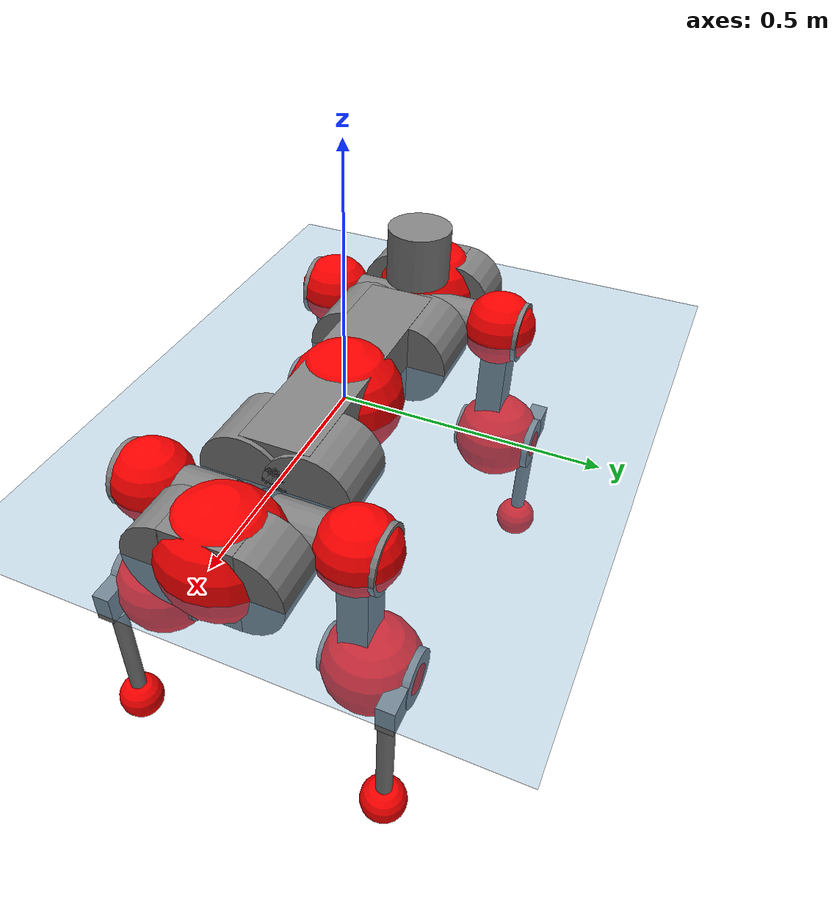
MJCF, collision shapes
<mujoco model="anymal_c">
  <compiler angle="radian" assetdir="assets" balanceinertia="true" inertiafromgeom="false"/>

  <option timestep="0.005" density="1.2" viscosity="2e-05"/>

  <size nkey="1"/>

  <visual>
    <quality shadowsize="8192"/>
    <map shadowclip="0.5"/>
  </visual>

  <default>
    <default class="/">
      <material specular="0" shininess="0.25"/>
      <geom contype="0" conaffinity="0" group="1" solref="-1000 -80"/>
      <site size="0.01 0.005 0.005" group="5"/>
      <general forcelimited="true" forcerange="-80 80" biastype="affine" gainprm="80" biasprm="0 -80 -2"/>
      <default class="anymal_c">
        <joint armature="0.01" damping="0.01" frictionloss="0.1"/>
        <default class="visual">
          <geom type="mesh" group="2"/>
          <default class="visual_zflip"/>
        </default>
        <default class="collision">
          <geom type="cylinder" group="3"/>
          <default class="foot">
            <geom size="0.03 0 0" type="sphere" condim="6" priority="1" friction="0.8 0.02 0.01" solimp="0.015 1 0.03"/>
          </default>
        </default>
      </default>
      <default class="reward_collision_sphere">
        <geom group="5" rgba="1 0 0 1"/>
      </default>
    </default>
  </default>

  <asset>
    <texture type="skybox" colorspace="auto" name="//unnamed_texture_0" builtin="gradient" rgb1="0.95 0.95 0.95" rgb2="0.95 0.95 0.95" width="100" height="600"/>
    <texture type="2d" colorspace="auto" name="texplane" builtin="checker" rgb1="0.345 0.575 0.748" rgb2="0.345 0.575 0.748" markrgb="1 1 1" width="512" height="512"/>
    <texture type="2d" colorspace="linear" name="base" file="base.png"/>
    <texture type="2d" colorspace="linear" name="top_shell" file="top_shell.png"/>
    <texture type="2d" colorspace="linear" name="bottom_shell" file="bottom_shell.png"/>
    <texture type="2d" colorspace="linear" name="remote" file="remote.png"/>
    <texture type="2d" colorspace="linear" name="hatch" file="hatch.png"/>
    <texture type="2d" colorspace="linear" name="handle" file="handle.png"/>
    <texture type="2d" colorspace="linear" name="face" file="face.png"/>
    <texture type="2d" colorspace="linear" name="battery" file="battery.png"/>
    <texture type="2d" colorspace="linear" name="lidar_cage" file="lidar_cage.png"/>
    <texture type="2d" colorspace="linear" name="depth_camera" file="depth_camera.png"/>
    <texture type="2d" colorspace="linear" name="wide_angle_camera" file="wide_angle_camera.png"/>
    <texture type="2d" colorspace="linear" name="lidar" file="lidar.png"/>
    <texture type="2d" colorspace="linear" name="drive" file="drive.png"/>
    <texture type="2d" colorspace="linear" name="hip_l" file="hip_l.png"/>
    <texture type="2d" colorspace="linear" name="shank_l" file="shank_l.png"/>
    <texture type="2d" colorspace="linear" name="foot" file="foot.png"/>
    <texture type="2d" colorspace="linear" name="thigh" file="thigh.png"/>
    <texture type="2d" colorspace="linear" name="shank_r" file="shank_r.png"/>
    <texture type="2d" colorspace="linear" name="hip_r" file="hip_r.png"/>
    <material name="MatPlane" class="/" texture="texplane" texuniform="true" texrepeat="2 2" specular="0.9" shininess="0.5"/>
    <material name="black_plastic" class="/" rgba="0.007 0.007 0.007 1"/>
    <material name="green" class="/" rgba="0.052 0.178 0.033 1"/>
    <material name="red" class="/" rgba="0.178 0.006 0.005 1"/>
    <material name="yellow" class="/" rgba="0.178 0.119 0.006 1"/>
    <material name="lwl" class="/" rgba="0.8 0.8 0.8 1"/>
    <material name="base" class="/" texture="base"/>
    <material name="top_shell" class="/" texture="top_shell"/>
    <material name="bottom_shell" class="/" texture="bottom_shell"/>
    <material name="hip_l" class="/" texture="hip_l"/>
    <material name="thigh" class="/" texture="thigh"/>
    <material name="shank_l" class="/" texture="shank_l"/>
    <material name="foot" class="/" texture="foot"/>
    <material name="hip_r" class="/" texture="hip_r"/>
    <material name="shank" class="/" texture="shank_r"/>
    <material name="hatch" class="/" texture="hatch"/>
    <material name="remote" class="/" texture="remote"/>
    <material name="handle" class="/" texture="handle"/>
    <material name="face" class="/" texture="face"/>
    <material name="depth_camera" class="/" texture="depth_camera"/>
    <material name="wide_angle_camera" class="/" texture="wide_angle_camera"/>
    <material name="battery" class="/" texture="battery"/>
    <material name="lidar_cage" class="/" texture="lidar_cage"/>
    <material name="lidar" class="/" texture="lidar"/>
    <material name="drive" class="/" texture="drive"/>
    <mesh name="base_0" class="/" file="base_0.obj"/>
    <mesh name="base_1" class="/" file="base_1.obj"/>
    <mesh name="base_2" class="/" file="base_2.obj"/>
    <mesh name="base_3" class="/" file="base_3.obj"/>
    <mesh name="base_4" class="/" file="base_4.obj"/>
    <mesh name="base_5" class="/" file="base_5.obj"/>
    <mesh name="top_shell" class="/" file="top_shell.obj"/>
    <mesh name="bottom_shell" class="/" file="bottom_shell.obj"/>
    <mesh name="remote" class="/" file="remote.obj"/>
    <mesh name="handle" class="/" file="handle.obj"/>
    <mesh name="face" class="/" file="face.obj"/>
    <mesh name="wide_angle_camera" class="/" file="wide_angle_camera.obj"/>
    <mesh name="depth_camera" class="/" file="depth_camera.obj"/>
    <mesh name="battery" class="/" file="battery.obj"/>
    <mesh name="lidar_cage" class="/" file="lidar_cage.obj"/>
    <mesh name="lidar" class="/" file="lidar.obj"/>
    <mesh name="drive" class="/" file="drive.obj"/>
    <mesh name="hip_l" class="/" file="hip_l.obj"/>
    <mesh name="thigh" class="/" file="thigh.obj"/>
    <mesh name="shank_l" class="/" file="shank_l.obj"/>
    <mesh name="foot" class="/" file="foot.obj"/>
    <mesh name="hip_r" class="/" file="hip_r.obj"/>
    <mesh name="hatch" class="/" file="hatch.obj"/>
    <mesh name="shank_r" class="/" file="shank_r.obj"/>
  </asset>

  <worldbody>
    <geom name="floor" class="/" size="100 100 0.125" type="plane" group="0" material="MatPlane"/>
    <light name="toplight_shadow" class="/" pos="0 0 5" dir="0.0990148 0.0990148 -0.990148" type="directional" ambient="0.04 0.04 0.04" diffuse="0.55 0.55 0.55" specular="0.12 0.12 0.12"/>
    <light name="toplight_fill" class="/" pos="0 0 5" dir="0.0990148 0.0990148 -0.990148" type="directional" castshadow="false" ambient="0.04 0.04 0.04" diffuse="0.3 0.3 0.3" specular="0.08 0.08 0.08"/>
    <body name="trunk" childclass="anymal_c" pos="0.000375552 0.000514506 0.000960653" quat="1 4.67006e-05 0.000352094 -7.07123e-09">
      <inertial pos="0.00332933 -0.000932086 0.0491849" quat="0.499508 0.501277 0.499536 0.499677" mass="17.5493" diaginertia="0.702317 0.368477 0.219078"/>
      <joint name="//unnamed_joint_0" type="free" armature="0" damping="0" frictionloss="0"/>
      <geom name="//unnamed_geom_1" class="visual" material="green" mesh="base_0"/>
      <geom name="//unnamed_geom_2" class="visual" material="yellow" mesh="base_1"/>
      <geom name="//unnamed_geom_3" class="visual" material="red" mesh="base_2"/>
      <geom name="//unnamed_geom_4" class="visual" material="black_plastic" mesh="base_3"/>
      <geom name="//unnamed_geom_5" class="visual" material="lwl" mesh="base_4"/>
      <geom name="//unnamed_geom_6" class="visual" material="base" mesh="base_5"/>
      <geom name="trunk_1" class="collision" size="0.281058 0.0678416 0.0872249" type="box"/>
      <geom name="trunk_2" class="collision" size="0.0872249 0.0702645" pos="0.220533 0.0628302 0" quat="0.707107 0 0.707107 0"/>
      <geom name="trunk_3" class="collision" size="0.0872249 0.0702645" pos="-0.220533 0.0628302 0" quat="0.707107 0 0.707107 0"/>
      <geom name="trunk_4" class="collision" size="0.0872249 0.0702645" pos="0.220533 -0.0628302 0" quat="0.707107 0 0.707107 0"/>
      <geom name="trunk_5" class="collision" size="0.0872249 0.0702645" pos="-0.220533 -0.0628302 0" quat="0.707107 0 0.707107 0"/>
      <geom name="//unnamed_geom_12" class="visual" material="top_shell" mesh="top_shell"/>
      <geom name="//unnamed_geom_13" class="visual" material="bottom_shell" mesh="bottom_shell"/>
      <geom name="//unnamed_geom_14" class="visual" material="remote" mesh="remote"/>
      <geom name="//unnamed_geom_15" class="visual" material="handle" mesh="handle"/>
      <geom name="//unnamed_geom_16" class="visual" pos="0.42028 0 0" quat="1 0 0 0" material="face" mesh="face"/>
      <geom name="trunk_6" class="collision" size="0.0533041 0.0678416 0.0872249" pos="0.476047 0 0" type="box"/>
      <geom name="//unnamed_geom_18" class="collision" size="0.0872249 0.0533041" pos="0.476047 0.0628302 0" quat="0.707107 0 0.707107 0"/>
      <geom name="//unnamed_geom_19" class="collision" size="0.0872249 0.0533041" pos="0.476047 -0.0628302 0" quat="0.707107 0 0.707107 0"/>
      <geom name="//unnamed_geom_20" class="visual" pos="0.468087 0 -0.028946" quat="0.965926 0 0.258819 0" material="depth_camera" mesh="depth_camera"/>
      <geom name="//unnamed_geom_21" class="visual" pos="0.520154 0 0.0149098" material="wide_angle_camera" mesh="wide_angle_camera"/>
      <geom name="//unnamed_geom_22" class="visual_zflip" pos="-0.42028 0 0" quat="0 0 0 1" material="face" mesh="face"/>
      <geom name="trunk_7" class="collision" size="0.0533041 0.0678416 0.0872249" pos="-0.476047 0 0" quat="0 0 0 1" type="box"/>
      <geom name="//unnamed_geom_24" class="collision" size="0.0872249 0.0533041" pos="-0.476047 -0.0628302 0" quat="0 -0.707107 0 0.707107"/>
      <geom name="//unnamed_geom_25" class="collision" size="0.0872249 0.0533041" pos="-0.476047 0.0628302 0" quat="0 -0.707107 0 0.707107"/>
      <geom name="//unnamed_geom_26" class="visual" pos="-0.468087 0 -0.028946" quat="0 -0.258819 0 0.965926" material="depth_camera" mesh="depth_camera"/>
      <geom name="//unnamed_geom_27" class="visual_zflip" pos="-0.520154 0 0.0149098" quat="0 0 0 1" material="wide_angle_camera" mesh="wide_angle_camera"/>
      <geom name="//unnamed_geom_28" class="visual" material="battery" mesh="battery"/>
      <geom name="//unnamed_geom_29" class="visual" pos="0 0.0671007 0.0290697" quat="0.683013 -0.183013 0.183013 0.683013" material="depth_camera" mesh="depth_camera"/>
      <geom name="//unnamed_geom_30" class="visual" pos="0 -0.0671007 0.0290697" quat="0.683013 0.183013 0.183013 -0.683013" material="depth_camera" mesh="depth_camera"/>
      <geom name="//unnamed_geom_31" class="visual" pos="-0.369076 0 0.0732043" quat="1 0 0 0" material="lidar_cage" mesh="lidar_cage"/>
      <geom name="trunk_8" class="collision" size="0.0678416 0.0581499" pos="-0.369076 0 0.132963"/>
      <geom name="//unnamed_geom_33" class="visual" pos="-0.369076 -4.57191e-05 0.141628" quat="0.707107 0 0 -0.707107" material="lidar" mesh="lidar"/>
      <geom name="//unnamed_geom_34" class="visual" pos="0.304082 0.0933827 -1.69746e-09" quat="0.258819 0.965926 0 0" material="drive" mesh="drive"/>
      <geom name="//unnamed_geom_35" class="visual" pos="0.304082 -0.0933827 1.69746e-09" quat="0.258819 -0.965926 0 0" material="drive" mesh="drive"/>
      <geom name="//unnamed_geom_36" class="visual" pos="-0.304082 0.0933827 1.69746e-09" quat="0 0 0.965926 -0.258819" material="drive" mesh="drive"/>
      <geom name="//unnamed_geom_37" class="visual" pos="-0.304082 -0.0933827 -1.69746e-09" quat="0 0 -0.965926 -0.258819" material="drive" mesh="drive"/>
      <geom name="//unnamed_geom_38" class="visual" pos="0.117618 0 0.0727063" quat="1 0 0 0" material="hatch" mesh="hatch"/>
      <geom name="//unnamed_geom_39" class="reward_collision_sphere" size="0.1163"/>
      <geom name="//unnamed_geom_40" class="reward_collision_sphere" size="0.1163" pos="0.456275 0 0"/>
      <geom name="//unnamed_geom_41" class="reward_collision_sphere" size="0.1163" pos="-0.456275 0 0"/>
      <site name="imu" pos="0.24771 -0.000864281 0.0493149" size="0.00969166"/>
      <camera name="track" pos="0 -1.79515 0" quat="0.707107 0.707107 0 0" mode="trackcom"/>
      <camera name="ego_camera" pos="0.456275 0 -0.0398391" quat="-0.5 -0.5 0.5 0.5"/>
      <body name="LF_HIP" pos="0.304334 0.093173 0.000792955" quat="0.258102 0.966118 -3.38337e-05 -4.95541e-05">
        <inertial pos="0.0584586 -0.0134588 -0.00803153" quat="-0.128672 0.710429 -0.134377 0.678732" mass="2.56502" diaginertia="0.00636362 0.00290666 0.00322868"/>
        <joint name="LF_HAA" pos="0 0 0" axis="0.999998 -0.00182227 -0.0002582" range="-0.70006 0.488414" armature="0.00962431" damping="0.0116731" frictionloss="0.0943456"/>
        <geom name="//unnamed_geom_42" class="visual" pos="0 -9.9854e-05 1.64009e-05" quat="0.258819 -0.965926 0 0" material="hip_l" mesh="hip_l"/>
        <geom name="//unnamed_geom_43" class="visual" pos="0.0607353 -0.0720965 -0.0423528" quat="0.183013 -0.683013 0.683013 0.183013" material="drive" mesh="drive"/>
        <geom name="//unnamed_geom_44" class="collision" size="0.0484583 0.0678416" pos="0.0607353 -0.0107348 -0.00687722" quat="-0.353553 -0.612372 0.612372 -0.353553"/>
        <body name="LF_THIGH" pos="0.0611272 -0.0656814 -0.0402145" quat="0.18303 -0.683083 0.682937 0.183014">
          <inertial pos="0.0317178 -0.00092246 -0.246328" quat="0.993164 -0.00408949 -0.0805623 0.0843673" mass="2.76875" diaginertia="0.0325074 0.0175556 0.00410866"/>
          <joint name="LF_HFE" pos="0 0 0" axis="0.999998 -0.00206321 0.000812307" range="-3.14348 3.16724" armature="0.0100667" damping="0.000659243" frictionloss="0.0972204"/>
          <geom name="//unnamed_geom_45" class="visual" pos="0.00231533 3.64841e-06 0" quat="0.707107 0 0 -0.707107" material="thigh" mesh="thigh"/>
          <geom name="//unnamed_geom_46" class="collision" size="0.0629958 0.0387666" pos="0.0405578 0 0" quat="0.5 0.5 -0.5 -0.5"/>
          <geom name="//unnamed_geom_47" class="collision" size="0.0363437 0.029075 0.136957" pos="0.0304184 0 -0.140746" quat="0.707107 0 0 -0.707107" type="box"/>
          <geom name="//unnamed_geom_48" class="visual" pos="0.101699 0 -0.283854" quat="1 0 0 0" material="drive" mesh="drive"/>
          <geom name="//unnamed_geom_49" class="collision" size="0.0484583 0.0678416" pos="0.0307225 0 -0.283854" quat="0.707107 0 0.707107 0"/>
          <geom name="//unnamed_geom_50" class="reward_collision_sphere" size="0.0775332" pos="0.0253486 0 0"/>
          <body name="LF_SHANK" pos="0.103469 0.00098585 -0.284228" quat="1 1.18542e-05 6.80393e-06 1.06064e-05">
            <inertial pos="0.00567182 -0.0540562 -0.0808923" quat="0.992854 -0.116608 -0.00083145 -0.0253629" mass="0.54115" diaginertia="0.0108081 0.00535926 0.00109301"/>
            <joint name="LF_KFE" pos="0 0 0" axis="1 -0.000349711 7.30078e-05" range="-3.15256 3.12606" armature="0.00963439" damping="0.00979437" frictionloss="0.0947056"/>
            <geom name="//unnamed_geom_51" class="visual" pos="0.000754977 0.00402558 0" quat="0.707107 0 0 -0.707107" material="shank_l" mesh="shank_l"/>
            <geom name="LF_kfe_act" class="collision" size="0.0581499 0.0193833" pos="0.0202789 0 0" quat="0.5 0.5 -0.5 -0.5"/>
            <geom name="//unnamed_geom_53" class="collision" size="0.0557261 0.0327093 0.0184141" pos="0.0202789 -0.0516096 0" quat="0.5 0.5 -0.5 -0.5" type="box"/>
            <geom name="//unnamed_geom_54" class="visual" pos="0.0132318 -0.0776444 -0.33661" quat="0.382683 0 0 -0.92388" material="foot" mesh="foot"/>
            <geom name="LF_calf" class="collision" size="0.0169604 0.136897" pos="0.013232 -0.0789417 -0.168305" quat="0.707107 0 0 -0.707107"/>
            <geom name="LF_foot" class="foot" size="0.0283578" pos="0.013232 -0.0789417 -0.314201" quat="0.707107 0 0 -0.707107"/>
            <geom name="//unnamed_geom_57" class="reward_collision_sphere" size="0.0969166" pos="-0.0506973 0 0"/>
            <geom name="//unnamed_geom_58" class="reward_collision_sphere" size="0.0484583" pos="0.013232 -0.0789417 -0.314201"/>
            <site name="LF_foot" class="foot" pos="0.013232 -0.0789417 -0.314201" quat="0.707107 0 0 -0.707107" size="0.00969166"/>
          </body>
        </body>
      </body>
      <body name="RF_HIP" pos="0.303684 -0.0950136 0.0011925" quat="0.258822 -0.965925 2.57853e-06 1.43603e-05">
        <inertial pos="0.0575526 0.0147423 -0.0084713" quat="0.133961 0.675757 0.127282 0.713587" mass="2.57206" diaginertia="0.00644801 0.00287803 0.00329148"/>
        <joint name="RF_HAA" pos="0 0 0" axis="0.999998 0.000346288 -0.00217155" range="-0.49863 0.717446" armature="0.00965137" damping="0.00911404" frictionloss="0.0944042"/>
        <geom name="//unnamed_geom_59" class="visual" pos="0 9.98532e-05 1.64009e-05" quat="0.258819 0.965926 0 0" material="hip_r" mesh="hip_r"/>
        <geom name="//unnamed_geom_60" class="visual" pos="0.0607353 0.0720965 -0.0423528" quat="0.183013 0.683013 0.683013 -0.183013" material="drive" mesh="drive"/>
        <geom name="//unnamed_geom_61" class="collision" size="0.0484583 0.0678416" pos="0.0607353 0.0107348 -0.00687722" quat="-0.353553 0.612372 0.612372 0.353553"/>
        <body name="RF_THIGH" pos="0.060123 0.0646913 -0.0419185" quat="0.183013 0.683044 0.682989 -0.182982">
          <inertial pos="0.0314714 -0.000100623 -0.245678" quat="0.992218 -0.00622412 -0.0891082 0.0867437" mass="2.82292" diaginertia="0.0332706 0.0176609 0.00416038"/>
          <joint name="RF_HFE" pos="0 0 0" axis="0.999999 -0.0011893 0.000372779" stiffness="0.00528017" range="-3.16517 3.14186" armature="0.0096599" damping="0.00935307" frictionloss="0.098155"/>
          <geom name="//unnamed_geom_62" class="visual" pos="0.00231533 3.64841e-06 0" quat="0.707107 0 0 -0.707107" material="thigh" mesh="thigh"/>
          <geom name="//unnamed_geom_63" class="collision" size="0.0629958 0.0387666" pos="0.0405578 0 0" quat="0.5 0.5 0.5 0.5"/>
          <geom name="//unnamed_geom_64" class="collision" size="0.0363437 0.029075 0.136957" pos="0.0304184 0 -0.140746" quat="0.707107 0 0 0.707107" type="box"/>
          <geom name="//unnamed_geom_65" class="visual" pos="0.101699 0 -0.283854" quat="1 0 0 0" material="drive" mesh="drive"/>
          <geom name="//unnamed_geom_66" class="collision" size="0.0484583 0.0678416" pos="0.0307225 0 -0.283854" quat="0.707107 0 0.707107 0"/>
          <geom name="//unnamed_geom_67" class="reward_collision_sphere" size="0.0775332" pos="0.0253486 0 0"/>
          <body name="RF_SHANK" pos="0.101272 0.000631702 -0.283744" quat="1 6.90987e-06 -7.12218e-06 1.38301e-05">
            <inertial pos="0.00604688 0.0546705 -0.078354" quat="0.993133 0.113932 0.00304772 0.0264041" mass="0.524098" diaginertia="0.0105388 0.00536911 0.00106115"/>
            <joint name="RF_KFE" pos="0 0 0" axis="0.999999 -0.00127436 0.000895524" stiffness="0.000421051" range="-3.13384 3.15572" armature="0.00957182" damping="0.00837757" frictionloss="0.0972023"/>
            <geom name="//unnamed_geom_68" class="visual" pos="0.000754973 -0.00402557 0" quat="0.707107 0 0 0.707107" material="shank" mesh="shank_r"/>
            <geom name="RF_kfe_act" class="collision" size="0.0581499 0.0193833" pos="0.0202789 0 0" quat="0.5 0.5 0.5 0.5"/>
            <geom name="//unnamed_geom_70" class="collision" size="0.0557261 0.0327093 0.0184141" pos="0.0202789 0.0516096 0" quat="0.5 0.5 0.5 0.5" type="box"/>
            <geom name="//unnamed_geom_71" class="visual" pos="0.0132322 0.0776444 -0.33661" quat="0.382683 0 0 0.92388" material="foot" mesh="foot"/>
            <geom name="RF_calf" class="collision" size="0.0169604 0.136897" pos="0.013232 0.0789417 -0.168305" quat="0.707107 0 0 0.707107"/>
            <geom name="RF_foot" class="foot" size="0.0290096" pos="0.013232 0.0789417 -0.314201" quat="0.707107 0 0 0.707107"/>
            <geom name="//unnamed_geom_74" class="reward_collision_sphere" size="0.0969166" pos="-0.0506973 0 0"/>
            <geom name="//unnamed_geom_75" class="reward_collision_sphere" size="0.0484583" pos="0.013232 0.0789417 -0.314201"/>
            <site name="RF_foot" class="foot" pos="0.013232 0.0789417 -0.314201" quat="0.707107 0 0 0.707107" size="0.00969166"/>
          </body>
        </body>
      </body>
      <body name="LH_HIP" pos="-0.304085 0.0943453 -0.000423378" quat="7.60323e-05 2.56019e-05 0.965914 -0.258863">
        <inertial pos="0.0577055 0.0133749 -0.00920224" quat="0.136221 0.679663 0.129858 0.708971" mass="2.54515" diaginertia="0.00628605 0.00287062 0.0032094"/>
        <joint name="LH_HAA" pos="0 0 0" axis="1 0.000698197 -0.000632656" range="-0.464193 0.74031" armature="0.00967075" damping="0.0124491" frictionloss="0.101003"/>
        <geom name="//unnamed_geom_76" class="visual" pos="0 9.98532e-05 1.64009e-05" quat="-0.258819 -0.965926 0 0" material="hip_r" mesh="hip_r"/>
        <geom name="//unnamed_geom_77" class="visual" pos="0.0607353 0.0720965 -0.0423528" quat="0.183013 0.683013 0.683013 -0.183013" material="drive" mesh="drive"/>
        <geom name="//unnamed_geom_78" class="collision" size="0.0484583 0.0678416" pos="0.0607353 0.0107348 -0.00687722" quat="-0.353553 0.612372 0.612372 0.353553"/>
        <body name="LH_THIGH" pos="0.0599035 0.0648309 -0.0416398" quat="0.182894 0.682996 0.683071 -0.182974">
          <inertial pos="0.0306272 0.0004154 -0.246118" quat="0.993007 -0.00254901 -0.0777998 0.0887606" mass="2.74943" diaginertia="0.0316151 0.017165 0.00401097"/>
          <joint name="LH_HFE" pos="0 0 0" axis="0.99999 0.00168266 -0.00408965" stiffness="0.0031358" range="-3.15917 3.13313" armature="0.00935444" damping="0.00621245" frictionloss="0.0972588"/>
          <geom name="//unnamed_geom_79" class="visual" pos="0.00231533 3.64841e-06 0" quat="0.707107 0 0 -0.707107" material="thigh" mesh="thigh"/>
          <geom name="//unnamed_geom_80" class="collision" size="0.0629958 0.0387666" pos="0.0405578 0 0" quat="0.5 0.5 -0.5 -0.5"/>
          <geom name="//unnamed_geom_81" class="collision" size="0.0363437 0.029075 0.136957" pos="0.0304184 0 -0.140746" quat="0.707107 0 0 -0.707107" type="box"/>
          <geom name="//unnamed_geom_82" class="visual" pos="0.101699 0 -0.283854" quat="1 0 0 0" material="drive" mesh="drive"/>
          <geom name="//unnamed_geom_83" class="collision" size="0.0484583 0.0678416" pos="0.0307225 0 -0.283854" quat="0.707107 0 0.707107 0"/>
          <geom name="//unnamed_geom_84" class="reward_collision_sphere" size="0.0775332" pos="0.0253486 0 0"/>
          <body name="LH_SHANK" pos="0.102404 -0.00142981 -0.284109" quat="1 -0.000136976 5.21621e-05 4.36955e-05">
            <inertial pos="0.00463877 0.0557015 -0.0809047" quat="0.992959 0.115653 -0.00160074 0.0255696" mass="0.537583" diaginertia="0.0109161 0.00533397 0.00110603"/>
            <joint name="LH_KFE" pos="0 0 0" axis="1 0.000501271 -1.67347e-05" range="-3.15136 3.14153" armature="0.0100012" damping="0.0118814" frictionloss="0.0927822"/>
            <geom name="//unnamed_geom_85" class="visual" pos="0.000754973 -0.00402557 0" quat="-0.707107 0 0 -0.707107" material="shank" mesh="shank_r"/>
            <geom name="LH_kfe_act" class="collision" size="0.0581499 0.0193833" pos="0.0202789 0 0" quat="0.5 0.5 -0.5 -0.5"/>
            <geom name="//unnamed_geom_87" class="collision" size="0.0557261 0.0327093 0.0184141" pos="0.0202789 0.0516096 0" quat="0.5 0.5 -0.5 -0.5" type="box"/>
            <geom name="//unnamed_geom_88" class="visual" pos="0.0132322 0.0776444 -0.33661" quat="-0.382683 0 0 -0.92388" material="foot" mesh="foot"/>
            <geom name="LH_calf" class="collision" size="0.0169604 0.136897" pos="0.013232 0.0789417 -0.168305" quat="0.707107 0 0 -0.707107"/>
            <geom name="LH_foot" class="foot" size="0.0309627" pos="0.013232 0.0789417 -0.314201" quat="0.707107 0 0 -0.707107"/>
            <geom name="//unnamed_geom_91" class="reward_collision_sphere" size="0.0969166" pos="-0.0506973 0 0"/>
            <geom name="//unnamed_geom_92" class="reward_collision_sphere" size="0.0484583" pos="0.013232 0.0789417 -0.314201"/>
            <site name="LH_foot" class="foot" pos="0.013232 0.0789417 -0.314201" quat="0.707107 0 0 -0.707107" size="0.00969166"/>
          </body>
        </body>
      </body>
      <body name="RH_HIP" pos="-0.304026 -0.0923652 7.67538e-05" quat="-8.59606e-05 0.000355796 -0.965954 -0.258712">
        <inertial pos="0.0572908 -0.0131193 -0.00811284" quat="-0.128 0.70983 -0.135133 0.679336" mass="2.45653" diaginertia="0.00612252 0.0027978 0.00316977"/>
        <joint name="RH_HAA" pos="0 0 0" axis="0.999997 -0.00228771 -0.000475313" range="-0.73448 0.489496" armature="0.0101354" damping="0.00666095" frictionloss="0.0938728"/>
        <geom name="//unnamed_geom_93" class="visual" pos="0 -9.9854e-05 1.64009e-05" quat="-0.258819 0.965926 0 0" material="hip_l" mesh="hip_l"/>
        <geom name="//unnamed_geom_94" class="visual" pos="0.0607353 -0.0720965 -0.0423528" quat="-0.183013 0.683013 -0.683013 -0.183013" material="drive" mesh="drive"/>
        <geom name="//unnamed_geom_95" class="collision" size="0.0484583 0.0678416" pos="0.0607353 -0.0107348 -0.00687722" quat="0.353553 0.612372 -0.612372 0.353553"/>
        <body name="RH_THIGH" pos="0.0609008 -0.0650824 -0.0409161" quat="-0.183104 0.68302 -0.682992 -0.182972">
          <inertial pos="0.0322953 -0.000449938 -0.244463" quat="0.99316 -0.00498584 -0.0807146 0.0842185" mass="2.77846" diaginertia="0.0319348 0.0173073 0.0040969"/>
          <joint name="RH_HFE" pos="0 0 0" axis="0.999984 -0.00139163 0.00553305" range="-3.16272 3.16179" armature="0.00952559" damping="0.00773074" frictionloss="0.095513"/>
          <geom name="//unnamed_geom_96" class="visual" pos="0.00231533 3.64841e-06 0" quat="0.707107 0 0 -0.707107" material="thigh" mesh="thigh"/>
          <geom name="//unnamed_geom_97" class="collision" size="0.0629958 0.0387666" pos="0.0405578 0 0" quat="0.5 0.5 0.5 0.5"/>
          <geom name="//unnamed_geom_98" class="collision" size="0.0363437 0.029075 0.136957" pos="0.0304184 0 -0.140746" quat="0.707107 0 0 0.707107" type="box"/>
          <geom name="//unnamed_geom_99" class="visual" pos="0.101699 0 -0.283854" quat="1 0 0 0" material="drive" mesh="drive"/>
          <geom name="//unnamed_geom_100" class="collision" size="0.0484583 0.0678416" pos="0.0307225 0 -0.283854" quat="0.707107 0 0.707107 0"/>
          <geom name="//unnamed_geom_101" class="reward_collision_sphere" size="0.0775332" pos="0.0253486 0 0"/>
          <body name="RH_SHANK" pos="0.10241 0.000634025 -0.284178" quat="1 7.76224e-05 8.33379e-05 0.000154179">
            <inertial pos="0.0050039 -0.0548461 -0.0803622" quat="0.993147 -0.114143 0.000829438 -0.025104" mass="0.540591" diaginertia="0.0109275 0.00541141 0.00110317"/>
            <joint name="RH_KFE" pos="0 0 0" axis="0.999954 -0.00526472 -0.00800893" range="-3.13089 3.11877" armature="0.0101122" damping="0" frictionloss="0.0972614"/>
            <geom name="//unnamed_geom_102" class="visual" pos="0.000754977 0.00402558 0" quat="0.707107 0 0 -0.707107" material="shank_l" mesh="shank_l"/>
            <geom name="RH_kfe_act" class="collision" size="0.0581499 0.0193833" pos="0.0202789 0 0" quat="0.5 0.5 0.5 0.5"/>
            <geom name="//unnamed_geom_104" class="collision" size="0.0557261 0.0327093 0.0184141" pos="0.0202789 -0.0516096 0" quat="0.5 0.5 0.5 0.5" type="box"/>
            <geom name="//unnamed_geom_105" class="visual" pos="0.0132318 -0.0776444 -0.33661" quat="0.382683 0 0 -0.92388" material="foot" mesh="foot"/>
            <geom name="RH_calf" class="collision" size="0.0169604 0.136897" pos="0.013232 -0.0789417 -0.168305" quat="0.707107 0 0 0.707107"/>
            <geom name="RH_foot" class="foot" size="0.0289212" pos="0.013232 -0.0789417 -0.314201" quat="0.707107 0 0 0.707107"/>
            <geom name="//unnamed_geom_108" class="reward_collision_sphere" size="0.0969166" pos="-0.0506973 0 0"/>
            <geom name="//unnamed_geom_109" class="reward_collision_sphere" size="0.0484583" pos="0.013232 -0.0789417 -0.314201"/>
            <site name="RH_foot" class="foot" pos="0.013232 -0.0789417 -0.314201" quat="0.707107 0 0 0.707107" size="0.00969166"/>
          </body>
        </body>
      </body>
    </body>
  </worldbody>

  <contact>
    <pair class="/" geom1="floor" geom2="LF_foot" name="//unnamed_contact_0"/>
    <pair class="/" geom1="floor" geom2="RF_foot" name="//unnamed_contact_1"/>
    <pair class="/" geom1="floor" geom2="LH_foot" name="//unnamed_contact_2"/>
    <pair class="/" geom1="floor" geom2="RH_foot" name="//unnamed_contact_3"/>
  </contact>

  <actuator>
    <general name="LF_HAA" class="/" joint="LF_HAA" forcerange="-78.2312 78.2312" gainprm="80.3264" biasprm="0 -80.3264 -2.00493"/>
    <general name="LF_HFE" class="/" joint="LF_HFE" forcerange="-79.4826 79.4826" gainprm="80.3264" biasprm="0 -80.3264 -2.00493"/>
    <general name="LF_KFE" class="/" joint="LF_KFE" forcerange="-76.1917 76.1917" gainprm="80.3264" biasprm="0 -80.3264 -2.00493"/>
    <general name="RF_HAA" class="/" joint="RF_HAA" forcerange="-79.6051 79.6051" gainprm="80.3264" biasprm="0 -80.3264 -2.00493"/>
    <general name="RF_HFE" class="/" joint="RF_HFE" forcerange="-76.9765 76.9765" gainprm="80.3264" biasprm="0 -80.3264 -2.00493"/>
    <general name="RF_KFE" class="/" joint="RF_KFE" forcerange="-83.039 83.039" gainprm="80.3264" biasprm="0 -80.3264 -2.00493"/>
    <general name="LH_HAA" class="/" joint="LH_HAA" forcerange="-81.3595 81.3595" gainprm="80.3264" biasprm="0 -80.3264 -2.00493"/>
    <general name="LH_HFE" class="/" joint="LH_HFE" forcerange="-75.1199 75.1199" gainprm="80.3264" biasprm="0 -80.3264 -2.00493"/>
    <general name="LH_KFE" class="/" joint="LH_KFE" forcerange="-80.0569 80.0569" gainprm="80.3264" biasprm="0 -80.3264 -2.00493"/>
    <general name="RH_HAA" class="/" joint="RH_HAA" forcerange="-78.06 78.06" gainprm="80.3264" biasprm="0 -80.3264 -2.00493"/>
    <general name="RH_HFE" class="/" joint="RH_HFE" forcerange="-73.5761 73.5761" gainprm="80.3264" biasprm="0 -80.3264 -2.00493"/>
    <general name="RH_KFE" class="/" joint="RH_KFE" forcerange="-77.2428 77.2428" gainprm="80.3264" biasprm="0 -80.3264 -2.00493"/>
  </actuator>

  <sensor>
    <gyro site="imu" name="imu_angular_velocity"/>
    <velocimeter site="imu" name="imu_linear_velocity"/>
    <framelinvel objtype="site" objname="LF_foot" name="LF_foot_global_linear_velocity"/>
    <framelinvel objtype="site" objname="RF_foot" name="RF_foot_global_linear_velocity"/>
    <framelinvel objtype="site" objname="LH_foot" name="LH_foot_global_linear_velocity"/>
    <framelinvel objtype="site" objname="RH_foot" name="RH_foot_global_linear_velocity"/>
  </sensor>

  <keyframe>
    <key name="home" qpos="0 0 0.55 1 0 0 0 0 0.4 -0.8 0 -0.4 0.8 0 -0.4 0.8 0 0.4 -0.8"/>
  </keyframe>
</mujoco>
